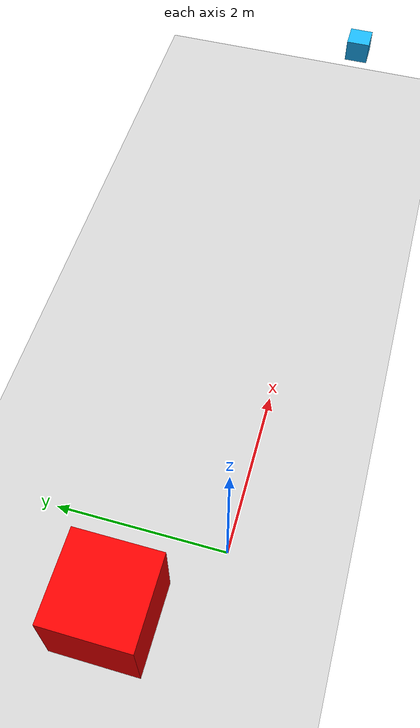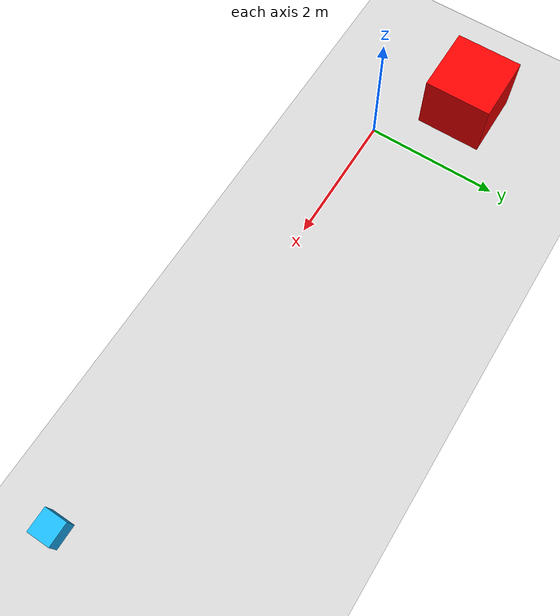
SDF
<?xml version="1.0" ?>
<sdf version="1.6">
  <world name="thermal_world">
    <physics name="1ms" type="ignored">
      <max_step_size>0.001</max_step_size>
      <real_time_factor>1.0</real_time_factor>
    </physics>

    <plugin filename="gz-sim-physics-system" name="gz::sim::systems::Physics"></plugin>
    <plugin filename="gz-sim-user-commands-system" name="gz::sim::systems::UserCommands"></plugin>
    <plugin filename="gz-sim-scene-broadcaster-system" name="gz::sim::systems::SceneBroadcaster"></plugin>

    <!-- CRITICAL: Sensors system MUST come before thermal system -->
    <plugin filename="gz-sim-sensors-system" name="gz::sim::systems::Sensors">
      <render_engine>ogre2</render_engine>
    </plugin>

    <!-- Thermal system - load AFTER sensors -->
    <plugin filename="gz-sim-thermal-system" name="gz::sim::systems::Thermal"></plugin>

    <plugin filename="libRadiometricThermalSensor.so" name="gz::sim::systems::RadiometricThermalSensor">
      <save_path>/home/dkhuttan/rgbt_project/rgbt_sim/RescueRandy/new_custom_plugin/radiometric</save_path>
      <min_temp>253.15</min_temp>
      <max_temp>373</max_temp>
      <resolution>3.0</resolution>
    </plugin>

    <gui fullscreen="0">
      <plugin filename="GzScene3D" name="3D View">
        <ignition-gui>
          <title>3D View</title>
          <property type="bool" key="showTitleBar">false</property>
          <property type="string" key="state">docked</property>
        </ignition-gui>
        <engine>ogre2</engine>
        <scene>scene</scene>
        <ambient_light>0.4 0.4 0.4</ambient_light>
        <background_color>0.8 0.8 0.8</background_color>
        <camera_pose>-6 0 6 0 0.5 0</camera_pose>
      </plugin>

      <plugin filename="WorldControl" name="World control">
        <ignition-gui>
          <title>World control</title>
          <property type="bool" key="showTitleBar">false</property>
          <property type="bool" key="resizable">false</property>
          <property type="double" key="height">72</property>
          <property type="double" key="width">121</property>
          <property type="double" key="z">1</property>
          <property type="string" key="state">floating</property>
          <anchors target="3D View">
            <line own="left" target="left"/>
            <line own="bottom" target="bottom"/>
          </anchors>
        </ignition-gui>
        <play_pause>true</play_pause>
        <step>true</step>
        <start_paused>true</start_paused>
        <service>/world/thermal_world/control</service>
        <stats_topic>/world/thermal_world/stats</stats_topic>
      </plugin>

      <plugin filename="WorldStats" name="World stats">
        <ignition-gui>
          <title>World stats</title>
          <property type="bool" key="showTitleBar">false</property>
          <property type="bool" key="resizable">false</property>
          <property type="double" key="height">110</property>
          <property type="double" key="width">290</property>
          <property type="double" key="z">1</property>
          <property type="string" key="state">floating</property>
          <anchors target="3D View">
            <line own="right" target="right"/>
            <line own="bottom" target="bottom"/>
          </anchors>
        </ignition-gui>
        <sim_time>true</sim_time>
        <real_time>true</real_time>
        <real_time_factor>true</real_time_factor>
        <iterations>true</iterations>
        <topic>/world/thermal_world/stats</topic>
      </plugin>

      <plugin filename="ImageDisplay" name="Image Display">
        <ignition-gui>
          <title>Thermal camera</title>
          <property key="state" type="string">floating</property>
          <property type="double" key="width">350</property>
          <property type="double" key="height">315</property>
        </ignition-gui>
        <topic>thermal/image</topic>
        <topic_picker>false</topic_picker>
      </plugin>

      <plugin filename="ImageDisplay" name="Image Display RGB">
        <ignition-gui>
          <title>RGB camera</title>
          <property key="state" type="string">floating</property>
          <property type="double" key="width">350</property>
          <property type="double" key="height">315</property>
          <property type="double" key="x">500</property>
        </ignition-gui>
        <topic>rgb/image</topic>
        <topic_picker>false</topic_picker>
      </plugin>
    </gui>

    <light type="directional" name="sun">
      <cast_shadows>true</cast_shadows>
      <pose>0 0 10 0 0 0</pose>
      <diffuse>0.8 0.8 0.8 1</diffuse>
      <specular>0.2 0.2 0.2 1</specular>
      <attenuation>
        <range>1000</range>
        <constant>0.9</constant>
        <linear>0.01</linear>
        <quadratic>0.001</quadratic>
      </attenuation>
      <direction>-0.5 0.1 -0.9</direction>
    </light>

    <!-- NO temperature gradient - keep it simple -->
    <atmosphere type="adiabatic">
      <temperature>293.15</temperature>
      <temperature_gradient>0.0</temperature_gradient>
    </atmosphere>

    <!-- Ground plane -->
    <model name="ground_plane">
      <static>true</static>
      <link name="link">
        <collision name="collision">
          <geometry>
            <box>
              <size>20 20 0.1</size>
            </box>
          </geometry>
        </collision>
        <visual name="visual">
          <geometry>
            <box>
              <size>20 20 0.1</size>
            </box>
          </geometry>
          <material>
            <ambient>0.8 0.8 0.8 1</ambient>
            <diffuse>0.8 0.8 0.8 1</diffuse>
            <specular>0.8 0.8 0.8 1</specular>
          </material>
          <plugin filename="gz-sim-thermal-system" name="gz::sim::systems::Thermal">
            <temperature>270.0</temperature>
          </plugin>
        </visual>
      </link>
    </model>

    <!-- Hot box - using heat_signature approach which is more stable -->
    <model name="box">
      <pose>-1 1 0.5 0 0 0</pose>
      <static>false</static>
      <link name="box_link">
        <inertial>
          <mass>1.0</mass>
          <inertia>
            <ixx>0.166667</ixx>
            <ixy>0</ixy>
            <ixz>0</ixz>
            <iyy>0.166667</iyy>
            <iyz>0</iyz>
            <izz>0.166667</izz>
          </inertia>
        </inertial>
        <collision name="box_collision">
          <geometry>
            <box>
              <size>1 1 1</size>
            </box>
          </geometry>
        </collision>
        <visual name="box_visual">
          <geometry>
            <box>
              <size>1 1 1</size>
            </box>
          </geometry>
          <material>
            <ambient>1 0 0 1</ambient>
            <diffuse>1 0 0 1</diffuse>
            <specular>1 0 0 1</specular>
          </material>
          <plugin filename="gz-sim-thermal-system" name="gz::sim::systems::Thermal">
            <!-- Try BOTH temperature AND heat_signature -->
            <temperature>350.0</temperature>
            <!-- Fallback: use a simple white PNG as heat signature -->
            <!-- You would need to create a white.png file -->
          </plugin>
        </visual>
      </link>
    </model>

    <!-- Camera rig -->
    <model name="camera_rig">
      <static>true</static>
      <pose>7 0 1.5 0 0 3.14</pose>
      <link name="cam_link">
        <visual name="rig_box">
          <geometry>
            <box>
              <size>0.3 0.3 0.3</size>
            </box>
          </geometry>
          <material>
            <ambient>0.1 0.7 1.0 1</ambient>
          </material>
        </visual>

        <sensor name="rgb_cam" type="camera">
          <pose>0 0.05 0 0 0 0</pose>
          <always_on>1</always_on>
          <update_rate>20</update_rate>
          <visualize>false</visualize>
          <topic>/rgb/image</topic>
          <camera>
            <image>
              <width>1280</width>
              <height>720</height>
              <format>R8G8B8</format>
            </image>
            <clip>
              <near>0.05</near>
              <far>200</far>
            </clip>
          </camera>
        </sensor>

        <sensor name="thermal_camera" type="thermal">
          <pose>0 0 0 0 0 0</pose>
          <always_on>1</always_on>
          <update_rate>10</update_rate>
          <visualize>true</visualize>
          <topic>/thermal/image</topic>
          <camera>
            <horizontal_fov>1.047</horizontal_fov>
            <image>
              <width>320</width>
              <height>240</height>
              <format>L16</format>
            </image>
            <clip>
              <near>0.1</near>
              <far>100</far>
            </clip>
          </camera>
          <!-- NO thermal sensor plugin here - let it use defaults -->
        </sensor>
      </link>
    </model>

  </world>
</sdf>
